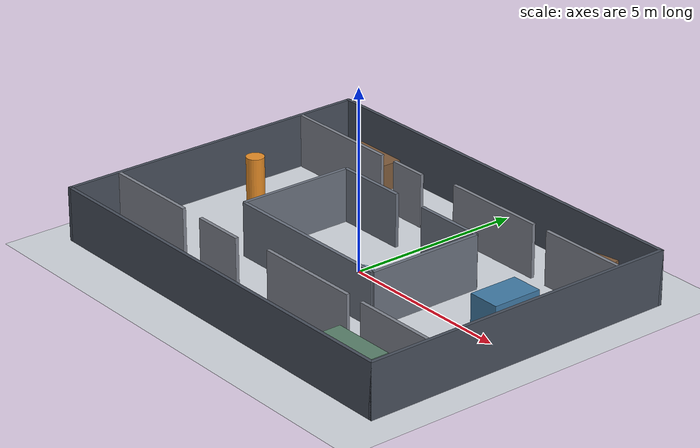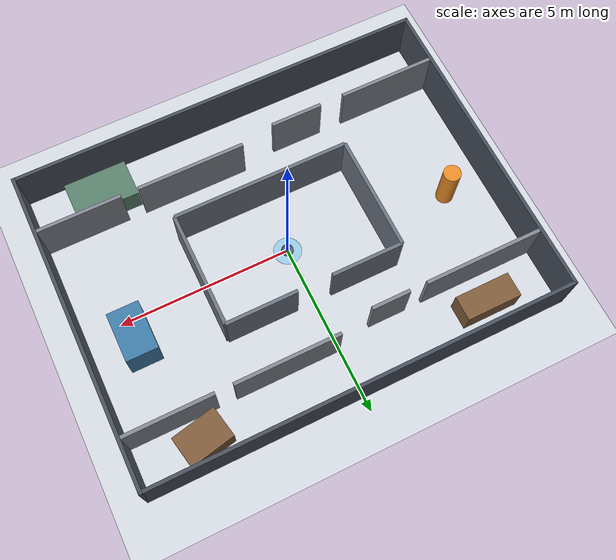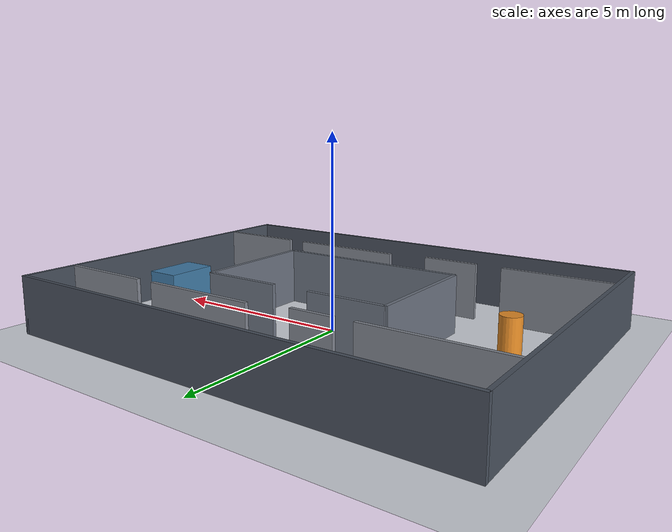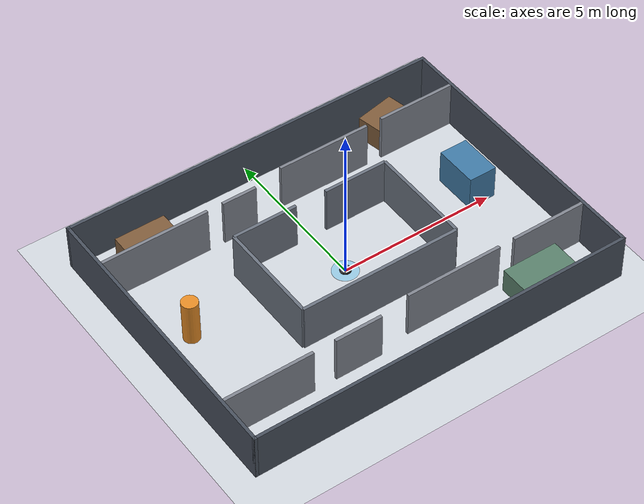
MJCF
<mujoco model="turtlebot4_slam_office_loop">
  <compiler angle="radian"/>
  <option gravity="0 0 -9.81" timestep="0.01"/>
  <include file="turtlebot4.xml"/>
  <worldbody>
    <light pos="0 0 6" dir="0 0 -1" diffuse="0.8 0.8 0.8"/>
    <geom name="floor" type="plane" size="7 6 0.1" rgba="0.82 0.84 0.87 1" friction="1 0.005 0.0001"/>
    <geom name="start_marker" type="cylinder" pos="0 0 0.006" size="0.4 0.005" rgba="0.1 0.7 0.95 0.3" contype="0" conaffinity="0"/>

    <!-- Outer shell: 12 m x 9 m. Walls are 0.1 m thick and 1.5 m high. -->
    <geom name="outer_n" type="box" pos="0 4.55 0.75" size="6.1 0.05 0.75" rgba="0.28 0.31 0.36 1"/>
    <geom name="outer_s" type="box" pos="0 -4.55 0.75" size="6.1 0.05 0.75" rgba="0.28 0.31 0.36 1"/>
    <geom name="outer_e" type="box" pos="6.05 0 0.75" size="0.05 4.6 0.75" rgba="0.28 0.31 0.36 1"/>
    <geom name="outer_w" type="box" pos="-6.05 0 0.75" size="0.05 4.6 0.75" rgba="0.28 0.31 0.36 1"/>

    <!-- Central office core. The robot can complete a loop around it. -->
    <!-- 1.0 m doorway in the north wall lets the robot leave the start room. -->
    <geom name="core_n_w" type="box" pos="-1.525 1.65 0.75" size="1.025 0.05 0.75" rgba="0.42 0.45 0.50 1"/>
    <geom name="core_n_e" type="box" pos="1.525 1.65 0.75" size="1.025 0.05 0.75" rgba="0.42 0.45 0.50 1"/>
    <geom name="core_s" type="box" pos="0 -1.65 0.75" size="2.55 0.05 0.75" rgba="0.42 0.45 0.50 1"/>
    <geom name="core_e" type="box" pos="2.55 0 0.75" size="0.05 1.65 0.75" rgba="0.42 0.45 0.50 1"/>
    <geom name="core_w" type="box" pos="-2.55 0 0.75" size="0.05 1.65 0.75" rgba="0.42 0.45 0.50 1"/>

    <!-- Office partitions with staggered 1 m doors. -->
    <geom name="north_room_w0" type="box" pos="-4.30 2.90 0.75" size="1.70 0.05 0.75" rgba="0.50 0.52 0.56 1"/>
    <geom name="north_room_w1" type="box" pos="-1.55 2.90 0.75" size="0.55 0.05 0.75" rgba="0.50 0.52 0.56 1"/>
    <geom name="north_room_e0" type="box" pos="1.50 3.15 0.75" size="1.50 0.05 0.75" rgba="0.50 0.52 0.56 1"/>
    <geom name="north_room_e1" type="box" pos="4.75 3.15 0.75" size="1.25 0.05 0.75" rgba="0.50 0.52 0.56 1"/>
    <geom name="south_room_w0" type="box" pos="-4.60 -3.05 0.75" size="1.40 0.05 0.75" rgba="0.50 0.52 0.56 1"/>
    <geom name="south_room_w1" type="box" pos="-1.75 -3.05 0.75" size="0.75 0.05 0.75" rgba="0.50 0.52 0.56 1"/>
    <geom name="south_room_e0" type="box" pos="1.55 -2.85 0.75" size="1.55 0.05 0.75" rgba="0.50 0.52 0.56 1"/>
    <geom name="south_room_e1" type="box" pos="4.80 -2.85 0.75" size="1.20 0.05 0.75" rgba="0.50 0.52 0.56 1"/>

    <!-- Distinct landmarks aid scan matching and orientation. -->
    <geom name="round_column" type="cylinder" pos="-4.8 0.4 0.7" size="0.25 0.7" rgba="0.9 0.55 0.15 1"/>
    <geom name="copy_station" type="box" pos="4.75 0.65 0.55" size="0.45 0.7 0.55" rgba="0.25 0.48 0.65 1"/>
    <geom name="desk_nw" type="box" pos="-4.1 3.75 0.38" size="0.8 0.35 0.38" rgba="0.50 0.36 0.23 1"/>
    <geom name="desk_ne" type="box" pos="4.2 3.85 0.38" size="0.65 0.45 0.38" euler="0 0 0.2" rgba="0.50 0.36 0.23 1"/>
    <geom name="meeting_table" type="box" pos="4.0 -3.65 0.38" size="0.9 0.55 0.38" rgba="0.35 0.50 0.42 1"/>
  </worldbody>
</mujoco>

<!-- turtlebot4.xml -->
<mujoco model="turtlebot4">
  <compiler angle="radian" coordinate="local" meshdir="./assets/meshes" autolimits="true"/>
  <size nstack="300000" nuser_geom="1"/>
  <option gravity="0 0 -9.81" timestep="0.002"/>

  <asset>
    <material name="metal" rgba=".9 .95 .95 1"/>
    <material name="black" rgba="0 0 0 1"/>
    <material name="white" rgba="1 1 1 1"/>
    <material name="gray" rgba="0.371705 0.392426 0.474270 1"/>
    <mesh file="body_visual_processed.stl" scale="0.1 0.1 0.1"/>
    <mesh file="bumper_visual.obj" scale="0.001 0.001 0.001"/>
    <mesh file="top_reduced.stl" scale="0.001 0.001 0.001"/>
    <mesh file="weight_block.stl" scale="0.001 0.001 0.001"/>
    <mesh file="wheel.stl" scale="0.001 0.001 0.001"/>
  </asset>

  <worldbody>
    <body name="base" pos="0 0 0.0392">
      <freejoint name="floating_base_joint"/>

      <!-- Robot geoms use group 1. The custom LiDAR ray caster includes
           group 0 only, preventing self-detection without changing collision. -->
      <geom type="mesh" mesh="body_visual_processed" material="gray" mass="0.269" group="1"/>

      <site name="base_frame" pos="0 0 0" quat="1 0 0 0" size="0.003"/>
      <site name="imu" pos="0.051 -0.035 0.0293"
            quat="1 0 0 0" size="0.003"/>

      <body name="bumper" pos="0 0 0" axisangle="0 0 1 4.71239">
        <geom type="mesh" mesh="bumper_visual" material="black" mass="0.1" group="1"/>
      </body>

      <body name="wheel_l" pos="0.11755 0.002 -0.0032">
        <geom type="mesh" mesh="wheel" group="1"/>
        <joint name="left" damping=".03" actuatorfrcrange="-.4 .4"
               pos="0 0 0" axis="1 0 0"/>
      </body>

      <body name="wheel_r" pos="-0.117 0.002 -0.0032">
        <geom type="mesh" mesh="wheel" group="1"/>
        <joint name="right" damping=".03" actuatorfrcrange="-.4 .4"
               pos="0 0 0" axis="1 0 0"/>
      </body>

      <body name="wheel_f" pos="0 -0.125 -0.026">
        <geom type="sphere" size="0.013 0.013" group="1"/>
        <joint type="ball"/>
      </body>

      <!-- Fixed 2D LiDAR frame. A complete 360-degree scan is generated
           by t2DLiDARSensor with mj_multiRay at one simulation timestamp. -->
      <body name="lidar" pos="0 0 0.08">
        <geom name="lidar_head_geom" type="cylinder" size="0.035 0.015"
              rgba="0.1 0.1 0.1 1" mass="0.01" group="1"/>
        <site name="laser_site" pos="0 0 0" quat="1 0 0 0"
              size="0.003" rgba="0 1 0 0.5"/>
      </body>
    </body>
  </worldbody>

  <tendon>
    <fixed name="forward">
      <joint joint="left" coef=".83"/>
      <joint joint="right" coef=".83"/>
    </fixed>
    <fixed name="turn">
      <joint joint="left" coef="-.1"/>
      <joint joint="right" coef=".1"/>
    </fixed>
  </tendon>

  <actuator>
    <motor name="forward" tendon="forward" ctrlrange="-0.5 0.5"/>
    <motor name="turn" tendon="turn" ctrlrange="-2 2"/>
  </actuator>

  <sensor>
    <!-- IMU -->
    <framequat name="imu_quat" objtype="site" objname="imu"/>
    <gyro name="imu_ang" site="imu"/>
    <accelerometer name="imu_acc" site="imu"/>

    <!-- Base pose and velocity for odometry. DSS keeps MuJoCo coordinates;
         dss_ros2_bridge converts them to ROS REP-103. -->
    <framepos name="base_pos" objtype="site" objname="base_frame"/>
    <framequat name="base_quat" objtype="site" objname="base_frame"/>
    <velocimeter name="base_linvel" site="base_frame"/>
    <gyro name="base_angvel" site="base_frame"/>

    <!-- Wheel joint states -->
    <jointpos name="left_pos" joint="left"/>
    <jointvel name="left_vel" joint="left"/>
    <jointpos name="right_pos" joint="right"/>
    <jointvel name="right_vel" joint="right"/>
  </sensor>
</mujoco>
